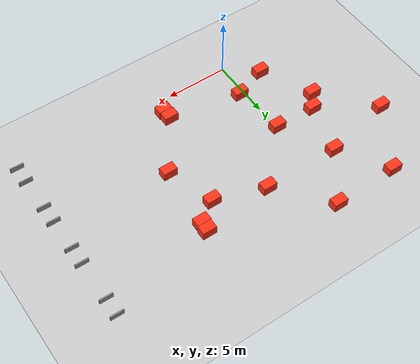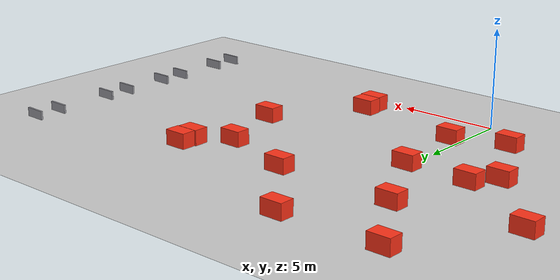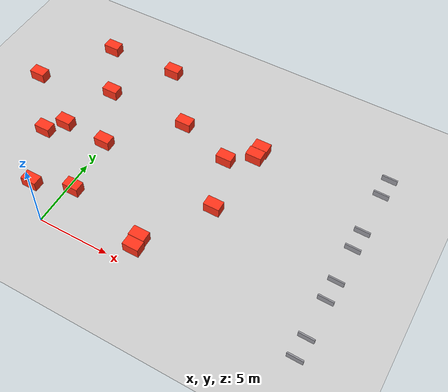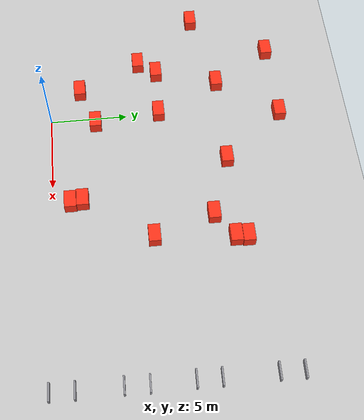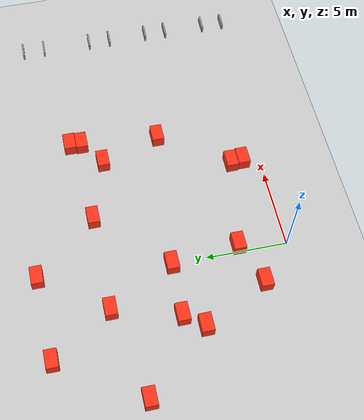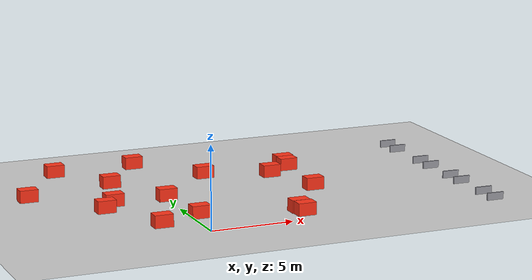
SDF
<sdf version="1.7">
 <world name="default">
  <model name="ground_plane">
   <static>1</static>
   <link name="link">
    <collision name="collision">
     <geometry><plane><normal>0 0 1</normal><size>100 100</size></plane></geometry>
     <surface>
      <contact><collide_bitmask>65535</collide_bitmask></contact>
      <friction>
       <ode><mu>200</mu><mu2>200</mu2><fdir1>0 0 0</fdir1><slip1>0</slip1><slip2>0</slip2></ode>
       <torsional>
        <coefficient>1</coefficient>
        <use_patch_radius>1</use_patch_radius>
        <patch_radius>0.1</patch_radius>
        <ode><slip>0</slip></ode>
       </torsional>
      </friction>
     </surface>
    </collision>
    <visual name="visual">
     <cast_shadows>0</cast_shadows>
     <geometry><plane><normal>0 0 1</normal><size>100 100</size></plane></geometry>
     <material>
      <script><uri>file://media/materials/scripts/gazebo.material</uri><name>Gazebo/Grey</name></script>
     </material>
    </visual>
   </link>
  </model>
  <model name="payload_box_clone_5_clone_10">
   <link name="link">
    <inertial>
     <mass>15</mass>
     <inertia><ixx>2.32332</ixx><ixy>0</ixy><ixz>0</ixz><iyy>1.43272</iyy><iyz>0</iyz><izz>2.2858</izz></inertia>
    </inertial>
    <visual name="visual">
     <geometry><box><size>0.747047 1.12719 0.766877</size></box></geometry>
     <material>
      <script><name>Gazebo/Grey</name><uri>file://media/materials/scripts/gazebo.material</uri></script>
      <shader type="pixel"><normal_map>__default__</normal_map></shader>
      <ambient>1 0.2 0.1 0</ambient>
      <diffuse>0.7 0.7 0.7 1</diffuse>
      <specular>0.01 0.01 0.01 1</specular>
      <emissive>0 0 0 1</emissive>
     </material>
    </visual>
    <collision name="collision">
     <geometry><box><size>0.747047 1.12719 0.766877</size></box></geometry>
     <surface>
      <friction>
       <ode><mu>1</mu><mu2>1</mu2><fdir1>0 0 0</fdir1><slip1>0</slip1><slip2>0</slip2></ode>
       <torsional>
        <coefficient>1</coefficient>
        <patch_radius>0</patch_radius>
        <surface_radius>0</surface_radius>
        <use_patch_radius>1</use_patch_radius>
        <ode><slip>0</slip></ode>
       </torsional>
      </friction>
      <bounce><restitution_coefficient>0</restitution_coefficient><threshold>1e+06</threshold></bounce>
      <contact>
       <collide_without_contact>0</collide_without_contact>
       <collide_without_contact_bitmask>1</collide_without_contact_bitmask>
       <collide_bitmask>1</collide_bitmask>
       <ode>
        <soft_cfm>0</soft_cfm>
        <soft_erp>0.2</soft_erp>
        <kp>1e+13</kp>
        <kd>1</kd>
        <max_vel>0.01</max_vel>
        <min_depth>0</min_depth>
       </ode>
       <bullet>
        <split_impulse>1</split_impulse>
        <split_impulse_penetration_threshold>-0.01</split_impulse_penetration_threshold>
        <soft_cfm>0</soft_cfm>
        <soft_erp>0.2</soft_erp>
        <kp>1e+13</kp>
        <kd>1</kd>
       </bullet>
      </contact>
     </surface>
    </collision>
   </link>
   <static>0</static>
   <pose>6.22353 1.88647 0.383438 0 -0 1.5709</pose>
  </model>
  <model name="payload_box_clone_5_clone_11">
   <link name="link">
    <inertial>
     <mass>15</mass>
     <inertia><ixx>2.32332</ixx><ixy>0</ixy><ixz>0</ixz><iyy>1.43272</iyy><iyz>0</iyz><izz>2.2858</izz></inertia>
    </inertial>
    <visual name="visual">
     <geometry><box><size>0.747047 1.12719 0.766877</size></box></geometry>
     <material>
      <script><name>Gazebo/Grey</name><uri>file://media/materials/scripts/gazebo.material</uri></script>
      <shader type="pixel"><normal_map>__default__</normal_map></shader>
      <ambient>1 0.2 0.1 0</ambient>
      <diffuse>0.7 0.7 0.7 1</diffuse>
      <specular>0.01 0.01 0.01 1</specular>
      <emissive>0 0 0 1</emissive>
     </material>
    </visual>
    <collision name="collision">
     <geometry><box><size>0.747047 1.12719 0.766877</size></box></geometry>
     <surface>
      <friction>
       <ode><mu>1</mu><mu2>1</mu2><fdir1>0 0 0</fdir1><slip1>0</slip1><slip2>0</slip2></ode>
       <torsional>
        <coefficient>1</coefficient>
        <patch_radius>0</patch_radius>
        <surface_radius>0</surface_radius>
        <use_patch_radius>1</use_patch_radius>
        <ode><slip>0</slip></ode>
       </torsional>
      </friction>
      <bounce><restitution_coefficient>0</restitution_coefficient><threshold>1e+06</threshold></bounce>
      <contact>
       <collide_without_contact>0</collide_without_contact>
       <collide_without_contact_bitmask>1</collide_without_contact_bitmask>
       <collide_bitmask>1</collide_bitmask>
       <ode>
        <soft_cfm>0</soft_cfm>
        <soft_erp>0.2</soft_erp>
        <kp>1e+13</kp>
        <kd>1</kd>
        <max_vel>0.01</max_vel>
        <min_depth>0</min_depth>
       </ode>
       <bullet>
        <split_impulse>1</split_impulse>
        <split_impulse_penetration_threshold>-0.01</split_impulse_penetration_threshold>
        <soft_cfm>0</soft_cfm>
        <soft_erp>0.2</soft_erp>
        <kp>1e+13</kp>
        <kd>1</kd>
       </bullet>
      </contact>
     </surface>
    </collision>
   </link>
   <static>0</static>
   <pose>6.28685 1.12341 0.383438 0 -0 1.5709</pose>
  </model>
  <model name="payload_box_clone_5_clone_13">
   <link name="link">
    <inertial>
     <mass>15</mass>
     <inertia><ixx>2.32332</ixx><ixy>0</ixy><ixz>0</ixz><iyy>1.43272</iyy><iyz>0</iyz><izz>2.2858</izz></inertia>
    </inertial>
    <visual name="visual">
     <geometry><box><size>0.747047 1.12719 0.766877</size></box></geometry>
     <material>
      <script><name>Gazebo/Grey</name><uri>file://media/materials/scripts/gazebo.material</uri></script>
      <shader type="pixel"><normal_map>__default__</normal_map></shader>
      <ambient>1 0.2 0.1 0</ambient>
      <diffuse>0.7 0.7 0.7 1</diffuse>
      <specular>0.01 0.01 0.01 1</specular>
      <emissive>0 0 0 1</emissive>
     </material>
    </visual>
    <collision name="collision">
     <geometry><box><size>0.747047 1.12719 0.766877</size></box></geometry>
     <surface>
      <friction>
       <ode><mu>1</mu><mu2>1</mu2><fdir1>0 0 0</fdir1><slip1>0</slip1><slip2>0</slip2></ode>
       <torsional>
        <coefficient>1</coefficient>
        <patch_radius>0</patch_radius>
        <surface_radius>0</surface_radius>
        <use_patch_radius>1</use_patch_radius>
        <ode><slip>0</slip></ode>
       </torsional>
      </friction>
      <bounce><restitution_coefficient>0</restitution_coefficient><threshold>1e+06</threshold></bounce>
      <contact>
       <collide_without_contact>0</collide_without_contact>
       <collide_without_contact_bitmask>1</collide_without_contact_bitmask>
       <collide_bitmask>1</collide_bitmask>
       <ode>
        <soft_cfm>0</soft_cfm>
        <soft_erp>0.2</soft_erp>
        <kp>1e+13</kp>
        <kd>1</kd>
        <max_vel>0.01</max_vel>
        <min_depth>0</min_depth>
       </ode>
       <bullet>
        <split_impulse>1</split_impulse>
        <split_impulse_penetration_threshold>-0.01</split_impulse_penetration_threshold>
        <soft_cfm>0</soft_cfm>
        <soft_erp>0.2</soft_erp>
        <kp>1e+13</kp>
        <kd>1</kd>
       </bullet>
      </contact>
     </surface>
    </collision>
   </link>
   <static>0</static>
   <pose>-2.19685 2.00197 0.383438 0 -0 1.5709</pose>
  </model>
  <model name="payload_box_clone_5_clone_16">
   <link name="link">
    <inertial>
     <mass>15</mass>
     <inertia><ixx>2.32332</ixx><ixy>0</ixy><ixz>0</ixz><iyy>1.43272</iyy><iyz>0</iyz><izz>2.2858</izz></inertia>
    </inertial>
    <visual name="visual">
     <geometry><box><size>0.747047 1.12719 0.766877</size></box></geometry>
     <material>
      <script><name>Gazebo/Grey</name><uri>file://media/materials/scripts/gazebo.material</uri></script>
      <shader type="pixel"><normal_map>__default__</normal_map></shader>
      <ambient>1 0.2 0.1 0</ambient>
      <diffuse>0.7 0.7 0.7 1</diffuse>
      <specular>0.01 0.01 0.01 1</specular>
      <emissive>0 0 0 1</emissive>
     </material>
    </visual>
    <collision name="collision">
     <geometry><box><size>0.747047 1.12719 0.766877</size></box></geometry>
     <surface>
      <friction>
       <ode><mu>1</mu><mu2>1</mu2><fdir1>0 0 0</fdir1><slip1>0</slip1><slip2>0</slip2></ode>
       <torsional>
        <coefficient>1</coefficient>
        <patch_radius>0</patch_radius>
        <surface_radius>0</surface_radius>
        <use_patch_radius>1</use_patch_radius>
        <ode><slip>0</slip></ode>
       </torsional>
      </friction>
      <bounce><restitution_coefficient>0</restitution_coefficient><threshold>1e+06</threshold></bounce>
      <contact>
       <collide_without_contact>0</collide_without_contact>
       <collide_without_contact_bitmask>1</collide_without_contact_bitmask>
       <collide_bitmask>1</collide_bitmask>
       <ode>
        <soft_cfm>0</soft_cfm>
        <soft_erp>0.2</soft_erp>
        <kp>1e+13</kp>
        <kd>1</kd>
        <max_vel>0.01</max_vel>
        <min_depth>0</min_depth>
       </ode>
       <bullet>
        <split_impulse>1</split_impulse>
        <split_impulse_penetration_threshold>-0.01</split_impulse_penetration_threshold>
        <soft_cfm>0</soft_cfm>
        <soft_erp>0.2</soft_erp>
        <kp>1e+13</kp>
        <kd>1</kd>
       </bullet>
      </contact>
     </surface>
    </collision>
   </link>
   <static>0</static>
   <pose>0.442507 2.94292 0.383438 0 -0 1.5709</pose>
  </model>
  <model name="payload_box_clone_5_clone_17">
   <link name="link">
    <inertial>
     <mass>15</mass>
     <inertia><ixx>2.32332</ixx><ixy>0</ixy><ixz>0</ixz><iyy>1.43272</iyy><iyz>0</iyz><izz>2.2858</izz></inertia>
    </inertial>
    <visual name="visual">
     <geometry><box><size>0.747047 1.12719 0.766877</size></box></geometry>
     <material>
      <script><name>Gazebo/Grey</name><uri>file://media/materials/scripts/gazebo.material</uri></script>
      <shader type="pixel"><normal_map>__default__</normal_map></shader>
      <ambient>1 0.2 0.1 0</ambient>
      <diffuse>0.7 0.7 0.7 1</diffuse>
      <specular>0.01 0.01 0.01 1</specular>
      <emissive>0 0 0 1</emissive>
     </material>
    </visual>
    <collision name="collision">
     <geometry><box><size>0.747047 1.12719 0.766877</size></box></geometry>
     <surface>
      <friction>
       <ode><mu>1</mu><mu2>1</mu2><fdir1>0 0 0</fdir1><slip1>0</slip1><slip2>0</slip2></ode>
       <torsional>
        <coefficient>1</coefficient>
        <patch_radius>0</patch_radius>
        <surface_radius>0</surface_radius>
        <use_patch_radius>1</use_patch_radius>
        <ode><slip>0</slip></ode>
       </torsional>
      </friction>
      <bounce><restitution_coefficient>0</restitution_coefficient><threshold>1e+06</threshold></bounce>
      <contact>
       <collide_without_contact>0</collide_without_contact>
       <collide_without_contact_bitmask>1</collide_without_contact_bitmask>
       <collide_bitmask>1</collide_bitmask>
       <ode>
        <soft_cfm>0</soft_cfm>
        <soft_erp>0.2</soft_erp>
        <kp>1e+13</kp>
        <kd>1</kd>
        <max_vel>0.01</max_vel>
        <min_depth>0</min_depth>
       </ode>
       <bullet>
        <split_impulse>1</split_impulse>
        <split_impulse_penetration_threshold>-0.01</split_impulse_penetration_threshold>
        <soft_cfm>0</soft_cfm>
        <soft_erp>0.2</soft_erp>
        <kp>1e+13</kp>
        <kd>1</kd>
       </bullet>
      </contact>
     </surface>
    </collision>
   </link>
   <static>0</static>
   <pose>-4.21639 6.06329 0.383438 0 -0 1.5709</pose>
  </model>
  <model name="payload_box_clone_5_clone_18">
   <link name="link">
    <inertial>
     <mass>15</mass>
     <inertia><ixx>2.32332</ixx><ixy>0</ixy><ixz>0</ixz><iyy>1.43272</iyy><iyz>0</iyz><izz>2.2858</izz></inertia>
    </inertial>
    <visual name="visual">
     <geometry><box><size>0.747047 1.12719 0.766877</size></box></geometry>
     <material>
      <script><name>Gazebo/Grey</name><uri>file://media/materials/scripts/gazebo.material</uri></script>
      <shader type="pixel"><normal_map>__default__</normal_map></shader>
      <ambient>1 0.2 0.1 0</ambient>
      <diffuse>0.7 0.7 0.7 1</diffuse>
      <specular>0.01 0.01 0.01 1</specular>
      <emissive>0 0 0 1</emissive>
     </material>
    </visual>
    <collision name="collision">
     <geometry><box><size>0.747047 1.12719 0.766877</size></box></geometry>
     <surface>
      <friction>
       <ode><mu>1</mu><mu2>1</mu2><fdir1>0 0 0</fdir1><slip1>0</slip1><slip2>0</slip2></ode>
       <torsional>
        <coefficient>1</coefficient>
        <patch_radius>0</patch_radius>
        <surface_radius>0</surface_radius>
        <use_patch_radius>1</use_patch_radius>
        <ode><slip>0</slip></ode>
       </torsional>
      </friction>
      <bounce><restitution_coefficient>0</restitution_coefficient><threshold>1e+06</threshold></bounce>
      <contact>
       <collide_without_contact>0</collide_without_contact>
       <collide_without_contact_bitmask>1</collide_without_contact_bitmask>
       <collide_bitmask>1</collide_bitmask>
       <ode>
        <soft_cfm>0</soft_cfm>
        <soft_erp>0.2</soft_erp>
        <kp>1e+13</kp>
        <kd>1</kd>
        <max_vel>0.01</max_vel>
        <min_depth>0</min_depth>
       </ode>
       <bullet>
        <split_impulse>1</split_impulse>
        <split_impulse_penetration_threshold>-0.01</split_impulse_penetration_threshold>
        <soft_cfm>0</soft_cfm>
        <soft_erp>0.2</soft_erp>
        <kp>1e+13</kp>
        <kd>1</kd>
       </bullet>
      </contact>
     </surface>
    </collision>
   </link>
   <static>0</static>
   <pose>9.0877 6.14162 0.383438 0 -0 1.5709</pose>
  </model>
  <model name="payload_box_clone_5_clone_19">
   <link name="link">
    <inertial>
     <mass>15</mass>
     <inertia><ixx>2.32332</ixx><ixy>0</ixy><ixz>0</ixz><iyy>1.43272</iyy><iyz>0</iyz><izz>2.2858</izz></inertia>
    </inertial>
    <visual name="visual">
     <geometry><box><size>0.747047 1.12719 0.766877</size></box></geometry>
     <material>
      <script><name>Gazebo/Grey</name><uri>file://media/materials/scripts/gazebo.material</uri></script>
      <shader type="pixel"><normal_map>__default__</normal_map></shader>
      <ambient>1 0.2 0.1 0</ambient>
      <diffuse>0.7 0.7 0.7 1</diffuse>
      <specular>0.01 0.01 0.01 1</specular>
      <emissive>0 0 0 1</emissive>
     </material>
    </visual>
    <collision name="collision">
     <geometry><box><size>0.747047 1.12719 0.766877</size></box></geometry>
     <surface>
      <friction>
       <ode><mu>1</mu><mu2>1</mu2><fdir1>0 0 0</fdir1><slip1>0</slip1><slip2>0</slip2></ode>
       <torsional>
        <coefficient>1</coefficient>
        <patch_radius>0</patch_radius>
        <surface_radius>0</surface_radius>
        <use_patch_radius>1</use_patch_radius>
        <ode><slip>0</slip></ode>
       </torsional>
      </friction>
      <bounce><restitution_coefficient>0</restitution_coefficient><threshold>1e+06</threshold></bounce>
      <contact>
       <collide_without_contact>0</collide_without_contact>
       <collide_without_contact_bitmask>1</collide_without_contact_bitmask>
       <collide_bitmask>1</collide_bitmask>
       <ode>
        <soft_cfm>0</soft_cfm>
        <soft_erp>0.2</soft_erp>
        <kp>1e+13</kp>
        <kd>1</kd>
        <max_vel>0.01</max_vel>
        <min_depth>0</min_depth>
       </ode>
       <bullet>
        <split_impulse>1</split_impulse>
        <split_impulse_penetration_threshold>-0.01</split_impulse_penetration_threshold>
        <soft_cfm>0</soft_cfm>
        <soft_erp>0.2</soft_erp>
        <kp>1e+13</kp>
        <kd>1</kd>
       </bullet>
      </contact>
     </surface>
    </collision>
   </link>
   <static>0</static>
   <pose>-0.03112 7.15043 0.383438 0 -0 1.5709</pose>
  </model>
  <model name="payload_box_clone_5_clone_20">
   <link name="link">
    <inertial>
     <mass>15</mass>
     <inertia><ixx>2.32332</ixx><ixy>0</ixy><ixz>0</ixz><iyy>1.43272</iyy><iyz>0</iyz><izz>2.2858</izz></inertia>
    </inertial>
    <visual name="visual">
     <geometry><box><size>0.747047 1.12719 0.766877</size></box></geometry>
     <material>
      <script><name>Gazebo/Grey</name><uri>file://media/materials/scripts/gazebo.material</uri></script>
      <shader type="pixel"><normal_map>__default__</normal_map></shader>
      <ambient>1 0.2 0.1 0</ambient>
      <diffuse>0.7 0.7 0.7 1</diffuse>
      <specular>0.01 0.01 0.01 1</specular>
      <emissive>0 0 0 1</emissive>
     </material>
    </visual>
    <collision name="collision">
     <geometry><box><size>0.747047 1.12719 0.766877</size></box></geometry>
     <surface>
      <friction>
       <ode><mu>1</mu><mu2>1</mu2><fdir1>0 0 0</fdir1><slip1>0</slip1><slip2>0</slip2></ode>
       <torsional>
        <coefficient>1</coefficient>
        <patch_radius>0</patch_radius>
        <surface_radius>0</surface_radius>
        <use_patch_radius>1</use_patch_radius>
        <ode><slip>0</slip></ode>
       </torsional>
      </friction>
      <bounce><restitution_coefficient>0</restitution_coefficient><threshold>1e+06</threshold></bounce>
      <contact>
       <collide_without_contact>0</collide_without_contact>
       <collide_without_contact_bitmask>1</collide_without_contact_bitmask>
       <collide_bitmask>1</collide_bitmask>
       <ode>
        <soft_cfm>0</soft_cfm>
        <soft_erp>0.2</soft_erp>
        <kp>1e+13</kp>
        <kd>1</kd>
        <max_vel>0.01</max_vel>
        <min_depth>0</min_depth>
       </ode>
       <bullet>
        <split_impulse>1</split_impulse>
        <split_impulse_penetration_threshold>-0.01</split_impulse_penetration_threshold>
        <soft_cfm>0</soft_cfm>
        <soft_erp>0.2</soft_erp>
        <kp>1e+13</kp>
        <kd>1</kd>
       </bullet>
      </contact>
     </surface>
    </collision>
   </link>
   <static>0</static>
   <pose>-3.31997 7.24294 0.383438 0 -0 1.5709</pose>
  </model>
  <model name="payload_box_clone_5_clone_21">
   <link name="link">
    <inertial>
     <mass>15</mass>
     <inertia><ixx>2.32332</ixx><ixy>0</ixy><ixz>0</ixz><iyy>1.43272</iyy><iyz>0</iyz><izz>2.2858</izz></inertia>
    </inertial>
    <visual name="visual">
     <geometry><box><size>0.747047 1.12719 0.766877</size></box></geometry>
     <material>
      <script><name>Gazebo/Grey</name><uri>file://media/materials/scripts/gazebo.material</uri></script>
      <shader type="pixel"><normal_map>__default__</normal_map></shader>
      <ambient>1 0.2 0.1 0</ambient>
      <diffuse>0.7 0.7 0.7 1</diffuse>
      <specular>0.01 0.01 0.01 1</specular>
      <emissive>0 0 0 1</emissive>
     </material>
    </visual>
    <collision name="collision">
     <geometry><box><size>0.747047 1.12719 0.766877</size></box></geometry>
     <surface>
      <friction>
       <ode><mu>1</mu><mu2>1</mu2><fdir1>0 0 0</fdir1><slip1>0</slip1><slip2>0</slip2></ode>
       <torsional>
        <coefficient>1</coefficient>
        <patch_radius>0</patch_radius>
        <surface_radius>0</surface_radius>
        <use_patch_radius>1</use_patch_radius>
        <ode><slip>0</slip></ode>
       </torsional>
      </friction>
      <bounce><restitution_coefficient>0</restitution_coefficient><threshold>1e+06</threshold></bounce>
      <contact>
       <collide_without_contact>0</collide_without_contact>
       <collide_without_contact_bitmask>1</collide_without_contact_bitmask>
       <collide_bitmask>1</collide_bitmask>
       <ode>
        <soft_cfm>0</soft_cfm>
        <soft_erp>0.2</soft_erp>
        <kp>1e+13</kp>
        <kd>1</kd>
        <max_vel>0.01</max_vel>
        <min_depth>0</min_depth>
       </ode>
       <bullet>
        <split_impulse>1</split_impulse>
        <split_impulse_penetration_threshold>-0.01</split_impulse_penetration_threshold>
        <soft_cfm>0</soft_cfm>
        <soft_erp>0.2</soft_erp>
        <kp>1e+13</kp>
        <kd>1</kd>
       </bullet>
      </contact>
     </surface>
    </collision>
   </link>
   <static>0</static>
   <pose>-7.72138 10.0718 0.383438 0 -0 1.5709</pose>
  </model>
  <model name="payload_box_clone_5_clone_22">
   <link name="link">
    <inertial>
     <mass>15</mass>
     <inertia><ixx>2.32332</ixx><ixy>0</ixy><ixz>0</ixz><iyy>1.43272</iyy><iyz>0</iyz><izz>2.2858</izz></inertia>
    </inertial>
    <visual name="visual">
     <geometry><box><size>0.747047 1.12719 0.766877</size></box></geometry>
     <material>
      <script><name>Gazebo/Grey</name><uri>file://media/materials/scripts/gazebo.material</uri></script>
      <shader type="pixel"><normal_map>__default__</normal_map></shader>
      <ambient>1 0.2 0.1 0</ambient>
      <diffuse>0.7 0.7 0.7 1</diffuse>
      <specular>0.01 0.01 0.01 1</specular>
      <emissive>0 0 0 1</emissive>
     </material>
    </visual>
    <collision name="collision">
     <geometry><box><size>0.747047 1.12719 0.766877</size></box></geometry>
     <surface>
      <friction>
       <ode><mu>1</mu><mu2>1</mu2><fdir1>0 0 0</fdir1><slip1>0</slip1><slip2>0</slip2></ode>
       <torsional>
        <coefficient>1</coefficient>
        <patch_radius>0</patch_radius>
        <surface_radius>0</surface_radius>
        <use_patch_radius>1</use_patch_radius>
        <ode><slip>0</slip></ode>
       </torsional>
      </friction>
      <bounce><restitution_coefficient>0</restitution_coefficient><threshold>1e+06</threshold></bounce>
      <contact>
       <collide_without_contact>0</collide_without_contact>
       <collide_without_contact_bitmask>1</collide_without_contact_bitmask>
       <collide_bitmask>1</collide_bitmask>
       <ode>
        <soft_cfm>0</soft_cfm>
        <soft_erp>0.2</soft_erp>
        <kp>1e+13</kp>
        <kd>1</kd>
        <max_vel>0.01</max_vel>
        <min_depth>0</min_depth>
       </ode>
       <bullet>
        <split_impulse>1</split_impulse>
        <split_impulse_penetration_threshold>-0.01</split_impulse_penetration_threshold>
        <soft_cfm>0</soft_cfm>
        <soft_erp>0.2</soft_erp>
        <kp>1e+13</kp>
        <kd>1</kd>
       </bullet>
      </contact>
     </surface>
    </collision>
   </link>
   <static>0</static>
   <pose>7.86278 9.9374 0.383438 0 -0 1.5709</pose>
  </model>
  <model name="payload_box_clone_5_clone_23">
   <link name="link">
    <inertial>
     <mass>15</mass>
     <inertia><ixx>2.32332</ixx><ixy>0</ixy><ixz>0</ixz><iyy>1.43272</iyy><iyz>0</iyz><izz>2.2858</izz></inertia>
    </inertial>
    <visual name="visual">
     <geometry><box><size>0.747047 1.12719 0.766877</size></box></geometry>
     <material>
      <script><name>Gazebo/Grey</name><uri>file://media/materials/scripts/gazebo.material</uri></script>
      <shader type="pixel"><normal_map>__default__</normal_map></shader>
      <ambient>1 0.2 0.1 0</ambient>
      <diffuse>0.7 0.7 0.7 1</diffuse>
      <specular>0.01 0.01 0.01 1</specular>
      <emissive>0 0 0 1</emissive>
     </material>
    </visual>
    <collision name="collision">
     <geometry><box><size>0.747047 1.12719 0.766877</size></box></geometry>
     <surface>
      <friction>
       <ode><mu>1</mu><mu2>1</mu2><fdir1>0 0 0</fdir1><slip1>0</slip1><slip2>0</slip2></ode>
       <torsional>
        <coefficient>1</coefficient>
        <patch_radius>0</patch_radius>
        <surface_radius>0</surface_radius>
        <use_patch_radius>1</use_patch_radius>
        <ode><slip>0</slip></ode>
       </torsional>
      </friction>
      <bounce><restitution_coefficient>0</restitution_coefficient><threshold>1e+06</threshold></bounce>
      <contact>
       <collide_without_contact>0</collide_without_contact>
       <collide_without_contact_bitmask>1</collide_without_contact_bitmask>
       <collide_bitmask>1</collide_bitmask>
       <ode>
        <soft_cfm>0</soft_cfm>
        <soft_erp>0.2</soft_erp>
        <kp>1e+13</kp>
        <kd>1</kd>
        <max_vel>0.01</max_vel>
        <min_depth>0</min_depth>
       </ode>
       <bullet>
        <split_impulse>1</split_impulse>
        <split_impulse_penetration_threshold>-0.01</split_impulse_penetration_threshold>
        <soft_cfm>0</soft_cfm>
        <soft_erp>0.2</soft_erp>
        <kp>1e+13</kp>
        <kd>1</kd>
       </bullet>
      </contact>
     </surface>
    </collision>
   </link>
   <static>0</static>
   <pose>9.50171 11.0764 0.383438 0 -0 1.5709</pose>
  </model>
  <model name="payload_box_clone_5_clone_24">
   <link name="link">
    <inertial>
     <mass>15</mass>
     <inertia><ixx>2.32332</ixx><ixy>0</ixy><ixz>0</ixz><iyy>1.43272</iyy><iyz>0</iyz><izz>2.2858</izz></inertia>
    </inertial>
    <visual name="visual">
     <geometry><box><size>0.747047 1.12719 0.766877</size></box></geometry>
     <material>
      <script><name>Gazebo/Grey</name><uri>file://media/materials/scripts/gazebo.material</uri></script>
      <shader type="pixel"><normal_map>__default__</normal_map></shader>
      <ambient>1 0.2 0.1 0</ambient>
      <diffuse>0.7 0.7 0.7 1</diffuse>
      <specular>0.01 0.01 0.01 1</specular>
      <emissive>0 0 0 1</emissive>
     </material>
    </visual>
    <collision name="collision">
     <geometry><box><size>0.747047 1.12719 0.766877</size></box></geometry>
     <surface>
      <friction>
       <ode><mu>1</mu><mu2>1</mu2><fdir1>0 0 0</fdir1><slip1>0</slip1><slip2>0</slip2></ode>
       <torsional>
        <coefficient>1</coefficient>
        <patch_radius>0</patch_radius>
        <surface_radius>0</surface_radius>
        <use_patch_radius>1</use_patch_radius>
        <ode><slip>0</slip></ode>
       </torsional>
      </friction>
      <bounce><restitution_coefficient>0</restitution_coefficient><threshold>1e+06</threshold></bounce>
      <contact>
       <collide_without_contact>0</collide_without_contact>
       <collide_without_contact_bitmask>1</collide_without_contact_bitmask>
       <collide_bitmask>1</collide_bitmask>
       <ode>
        <soft_cfm>0</soft_cfm>
        <soft_erp>0.2</soft_erp>
        <kp>1e+13</kp>
        <kd>1</kd>
        <max_vel>0.01</max_vel>
        <min_depth>0</min_depth>
       </ode>
       <bullet>
        <split_impulse>1</split_impulse>
        <split_impulse_penetration_threshold>-0.01</split_impulse_penetration_threshold>
        <soft_cfm>0</soft_cfm>
        <soft_erp>0.2</soft_erp>
        <kp>1e+13</kp>
        <kd>1</kd>
       </bullet>
      </contact>
     </surface>
    </collision>
   </link>
   <static>0</static>
   <pose>9.56595 11.8328 0.383438 0 -0 1.5709</pose>
  </model>
  <model name="payload_box_clone_5_clone_25">
   <link name="link">
    <inertial>
     <mass>15</mass>
     <inertia><ixx>2.32332</ixx><ixy>0</ixy><ixz>0</ixz><iyy>1.43272</iyy><iyz>0</iyz><izz>2.2858</izz></inertia>
    </inertial>
    <visual name="visual">
     <geometry><box><size>0.747047 1.12719 0.766877</size></box></geometry>
     <material>
      <script><name>Gazebo/Grey</name><uri>file://media/materials/scripts/gazebo.material</uri></script>
      <shader type="pixel"><normal_map>__default__</normal_map></shader>
      <ambient>1 0.2 0.1 0</ambient>
      <diffuse>0.7 0.7 0.7 1</diffuse>
      <specular>0.01 0.01 0.01 1</specular>
      <emissive>0 0 0 1</emissive>
     </material>
    </visual>
    <collision name="collision">
     <geometry><box><size>0.747047 1.12719 0.766877</size></box></geometry>
     <surface>
      <friction>
       <ode><mu>1</mu><mu2>1</mu2><fdir1>0 0 0</fdir1><slip1>0</slip1><slip2>0</slip2></ode>
       <torsional>
        <coefficient>1</coefficient>
        <patch_radius>0</patch_radius>
        <surface_radius>0</surface_radius>
        <use_patch_radius>1</use_patch_radius>
        <ode><slip>0</slip></ode>
       </torsional>
      </friction>
      <bounce><restitution_coefficient>0</restitution_coefficient><threshold>1e+06</threshold></bounce>
      <contact>
       <collide_without_contact>0</collide_without_contact>
       <collide_without_contact_bitmask>1</collide_without_contact_bitmask>
       <collide_bitmask>1</collide_bitmask>
       <ode>
        <soft_cfm>0</soft_cfm>
        <soft_erp>0.2</soft_erp>
        <kp>1e+13</kp>
        <kd>1</kd>
        <max_vel>0.01</max_vel>
        <min_depth>0</min_depth>
       </ode>
       <bullet>
        <split_impulse>1</split_impulse>
        <split_impulse_penetration_threshold>-0.01</split_impulse_penetration_threshold>
        <soft_cfm>0</soft_cfm>
        <soft_erp>0.2</soft_erp>
        <kp>1e+13</kp>
        <kd>1</kd>
       </bullet>
      </contact>
     </surface>
    </collision>
   </link>
   <static>0</static>
   <pose>3.9177 11.243 0.383438 0 -0 1.5709</pose>
  </model>
  <model name="payload_box_clone_5_clone_26">
   <link name="link">
    <inertial>
     <mass>15</mass>
     <inertia><ixx>2.32332</ixx><ixy>0</ixy><ixz>0</ixz><iyy>1.43272</iyy><iyz>0</iyz><izz>2.2858</izz></inertia>
    </inertial>
    <visual name="visual">
     <geometry><box><size>0.747047 1.12719 0.766877</size></box></geometry>
     <material>
      <script><name>Gazebo/Grey</name><uri>file://media/materials/scripts/gazebo.material</uri></script>
      <shader type="pixel"><normal_map>__default__</normal_map></shader>
      <ambient>1 0.2 0.1 0</ambient>
      <diffuse>0.7 0.7 0.7 1</diffuse>
      <specular>0.01 0.01 0.01 1</specular>
      <emissive>0 0 0 1</emissive>
     </material>
    </visual>
    <collision name="collision">
     <geometry><box><size>0.747047 1.12719 0.766877</size></box></geometry>
     <surface>
      <friction>
       <ode><mu>1</mu><mu2>1</mu2><fdir1>0 0 0</fdir1><slip1>0</slip1><slip2>0</slip2></ode>
       <torsional>
        <coefficient>1</coefficient>
        <patch_radius>0</patch_radius>
        <surface_radius>0</surface_radius>
        <use_patch_radius>1</use_patch_radius>
        <ode><slip>0</slip></ode>
       </torsional>
      </friction>
      <bounce><restitution_coefficient>0</restitution_coefficient><threshold>1e+06</threshold></bounce>
      <contact>
       <collide_without_contact>0</collide_without_contact>
       <collide_without_contact_bitmask>1</collide_without_contact_bitmask>
       <collide_bitmask>1</collide_bitmask>
       <ode>
        <soft_cfm>0</soft_cfm>
        <soft_erp>0.2</soft_erp>
        <kp>1e+13</kp>
        <kd>1</kd>
        <max_vel>0.01</max_vel>
        <min_depth>0</min_depth>
       </ode>
       <bullet>
        <split_impulse>1</split_impulse>
        <split_impulse_penetration_threshold>-0.01</split_impulse_penetration_threshold>
        <soft_cfm>0</soft_cfm>
        <soft_erp>0.2</soft_erp>
        <kp>1e+13</kp>
        <kd>1</kd>
       </bullet>
      </contact>
     </surface>
    </collision>
   </link>
   <static>0</static>
   <pose>-2.17649 11.263 0.383438 0 -0 1.5709</pose>
  </model>
  <model name="payload_box_clone_5_clone_27">
   <link name="link">
    <inertial>
     <mass>15</mass>
     <inertia><ixx>2.32332</ixx><ixy>0</ixy><ixz>0</ixz><iyy>1.43272</iyy><iyz>0</iyz><izz>2.2858</izz></inertia>
    </inertial>
    <visual name="visual">
     <geometry><box><size>0.747047 1.12719 0.766877</size></box></geometry>
     <material>
      <script><name>Gazebo/Grey</name><uri>file://media/materials/scripts/gazebo.material</uri></script>
      <shader type="pixel"><normal_map>__default__</normal_map></shader>
      <ambient>1 0.2 0.1 0</ambient>
      <diffuse>0.7 0.7 0.7 1</diffuse>
      <specular>0.01 0.01 0.01 1</specular>
      <emissive>0 0 0 1</emissive>
     </material>
    </visual>
    <collision name="collision">
     <geometry><box><size>0.747047 1.12719 0.766877</size></box></geometry>
     <surface>
      <friction>
       <ode><mu>1</mu><mu2>1</mu2><fdir1>0 0 0</fdir1><slip1>0</slip1><slip2>0</slip2></ode>
       <torsional>
        <coefficient>1</coefficient>
        <patch_radius>0</patch_radius>
        <surface_radius>0</surface_radius>
        <use_patch_radius>1</use_patch_radius>
        <ode><slip>0</slip></ode>
       </torsional>
      </friction>
      <bounce><restitution_coefficient>0</restitution_coefficient><threshold>1e+06</threshold></bounce>
      <contact>
       <collide_without_contact>0</collide_without_contact>
       <collide_without_contact_bitmask>1</collide_without_contact_bitmask>
       <collide_bitmask>1</collide_bitmask>
       <ode>
        <soft_cfm>0</soft_cfm>
        <soft_erp>0.2</soft_erp>
        <kp>1e+13</kp>
        <kd>1</kd>
        <max_vel>0.01</max_vel>
        <min_depth>0</min_depth>
       </ode>
       <bullet>
        <split_impulse>1</split_impulse>
        <split_impulse_penetration_threshold>-0.01</split_impulse_penetration_threshold>
        <soft_cfm>0</soft_cfm>
        <soft_erp>0.2</soft_erp>
        <kp>1e+13</kp>
        <kd>1</kd>
       </bullet>
      </contact>
     </surface>
    </collision>
   </link>
   <static>0</static>
   <pose>0.612798 15.165 0.383438 0 -0 1.57088</pose>
  </model>
  <model name="payload_box_clone_5_clone_29">
   <link name="link">
    <inertial>
     <mass>15</mass>
     <inertia><ixx>2.32332</ixx><ixy>0</ixy><ixz>0</ixz><iyy>1.43272</iyy><iyz>0</iyz><izz>2.2858</izz></inertia>
    </inertial>
    <visual name="visual">
     <geometry><box><size>0.747047 1.12719 0.766877</size></box></geometry>
     <material>
      <script><name>Gazebo/Grey</name><uri>file://media/materials/scripts/gazebo.material</uri></script>
      <shader type="pixel"><normal_map>__default__</normal_map></shader>
      <ambient>1 0.2 0.1 0</ambient>
      <diffuse>0.7 0.7 0.7 1</diffuse>
      <specular>0.01 0.01 0.01 1</specular>
      <emissive>0 0 0 1</emissive>
     </material>
    </visual>
    <collision name="collision">
     <geometry><box><size>0.747047 1.12719 0.766877</size></box></geometry>
     <surface>
      <friction>
       <ode><mu>1</mu><mu2>1</mu2><fdir1>0 0 0</fdir1><slip1>0</slip1><slip2>0</slip2></ode>
       <torsional>
        <coefficient>1</coefficient>
        <patch_radius>0</patch_radius>
        <surface_radius>0</surface_radius>
        <use_patch_radius>1</use_patch_radius>
        <ode><slip>0</slip></ode>
       </torsional>
      </friction>
      <bounce><restitution_coefficient>0</restitution_coefficient><threshold>1e+06</threshold></bounce>
      <contact>
       <collide_without_contact>0</collide_without_contact>
       <collide_without_contact_bitmask>1</collide_without_contact_bitmask>
       <collide_bitmask>1</collide_bitmask>
       <ode>
        <soft_cfm>0</soft_cfm>
        <soft_erp>0.2</soft_erp>
        <kp>1e+13</kp>
        <kd>1</kd>
        <max_vel>0.01</max_vel>
        <min_depth>0</min_depth>
       </ode>
       <bullet>
        <split_impulse>1</split_impulse>
        <split_impulse_penetration_threshold>-0.01</split_impulse_penetration_threshold>
        <soft_cfm>0</soft_cfm>
        <soft_erp>0.2</soft_erp>
        <kp>1e+13</kp>
        <kd>1</kd>
       </bullet>
      </contact>
     </surface>
    </collision>
   </link>
   <static>0</static>
   <pose>-4.57712 15.0248 0.383438 0 -0 1.5709</pose>
  </model>
  <model name="stand_1_clone_1_legs_clone">
   <static>1</static>
   <link name="walls_link">
    <collision name="left_wall_col">
     <pose>0.72 0 0.225 0 -0 0</pose>
     <geometry><box><size>0.1 1.06 0.45</size></box></geometry>
     <surface><friction><ode><mu>10</mu><mu2>10</mu2><slip1>0</slip1><slip2>0</slip2></ode></friction></surface>
    </collision>
    <visual name="left_wall_vis">
     <pose>0.72 0 0.225 0 -0 0</pose>
     <geometry><box><size>0.1 1.06 0.45</size></box></geometry>
     <material>
      <ambient>0.6 0.6 0.63 1</ambient>
      <diffuse>0.6 0.6 0.63 1</diffuse>
      <specular>0.3 0.3 0.3 1</specular>
     </material>
    </visual>
    <collision name="right_wall_col">
     <pose>-0.72 0 0.225 0 -0 0</pose>
     <geometry><box><size>0.1 1.06 0.45</size></box></geometry>
     <surface><friction><ode><mu>10</mu><mu2>10</mu2><slip1>0</slip1><slip2>0</slip2></ode></friction></surface>
    </collision>
    <visual name="right_wall_vis">
     <pose>-0.72 0 0.225 0 -0 0</pose>
     <geometry><box><size>0.1 1.06 0.45</size></box></geometry>
     <material>
      <ambient>0.6 0.6 0.63 1</ambient>
      <diffuse>0.6 0.6 0.63 1</diffuse>
      <specular>0.3 0.3 0.3 1</specular>
     </material>
    </visual>
    <inertial>
     <mass>25</mass>
     <inertia><ixx>1.4</ixx><iyy>2.1</iyy><izz>3.2</izz><ixy>0</ixy><ixz>0</ixz><iyz>0</iyz></inertia>
    </inertial>
   </link>
   <pose>18 0.302234 -2e-06 4e-06 -1e-06 -1.58624</pose>
  </model>
  <model name="stand_1_legs_clone">
   <static>1</static>
   <link name="walls_link">
    <collision name="left_wall_col">
     <pose>0.72 0 0.225 0 -0 0</pose>
     <geometry><box><size>0.1 1.06 0.45</size></box></geometry>
     <surface><friction><ode><mu>10</mu><mu2>10</mu2><slip1>0</slip1><slip2>0</slip2></ode></friction></surface>
    </collision>
    <visual name="left_wall_vis">
     <pose>0.72 0 0.225 0 -0 0</pose>
     <geometry><box><size>0.1 1.06 0.45</size></box></geometry>
     <material>
      <ambient>0.6 0.6 0.63 1</ambient>
      <diffuse>0.6 0.6 0.63 1</diffuse>
      <specular>0.3 0.3 0.3 1</specular>
     </material>
    </visual>
    <collision name="right_wall_col">
     <pose>-0.72 0 0.225 0 -0 0</pose>
     <geometry><box><size>0.1 1.06 0.45</size></box></geometry>
     <surface><friction><ode><mu>10</mu><mu2>10</mu2><slip1>0</slip1><slip2>0</slip2></ode></friction></surface>
    </collision>
    <visual name="right_wall_vis">
     <pose>-0.72 0 0.225 0 -0 0</pose>
     <geometry><box><size>0.1 1.06 0.45</size></box></geometry>
     <material>
      <ambient>0.6 0.6 0.63 1</ambient>
      <diffuse>0.6 0.6 0.63 1</diffuse>
      <specular>0.3 0.3 0.3 1</specular>
     </material>
    </visual>
    <inertial>
     <mass>25</mass>
     <inertia><ixx>1.4</ixx><iyy>2.1</iyy><izz>3.2</izz><ixy>0</ixy><ixz>0</ixz><iyz>0</iyz></inertia>
    </inertial>
   </link>
   <pose>18 4.44507 -3e-06 1.3e-05 2e-06 -1.58718</pose>
  </model>
  <model name="stand_1_clone_legs_clone">
   <static>1</static>
   <link name="walls_link">
    <collision name="left_wall_col">
     <pose>0.72 0 0.225 0 -0 0</pose>
     <geometry><box><size>0.1 1.06 0.45</size></box></geometry>
     <surface><friction><ode><mu>10</mu><mu2>10</mu2><slip1>0</slip1><slip2>0</slip2></ode></friction></surface>
    </collision>
    <visual name="left_wall_vis">
     <pose>0.72 0 0.225 0 -0 0</pose>
     <geometry><box><size>0.1 1.06 0.45</size></box></geometry>
     <material>
      <ambient>0.6 0.6 0.63 1</ambient>
      <diffuse>0.6 0.6 0.63 1</diffuse>
      <specular>0.3 0.3 0.3 1</specular>
     </material>
    </visual>
    <collision name="right_wall_col">
     <pose>-0.72 0 0.225 0 -0 0</pose>
     <geometry><box><size>0.1 1.06 0.45</size></box></geometry>
     <surface><friction><ode><mu>10</mu><mu2>10</mu2><slip1>0</slip1><slip2>0</slip2></ode></friction></surface>
    </collision>
    <visual name="right_wall_vis">
     <pose>-0.72 0 0.225 0 -0 0</pose>
     <geometry><box><size>0.1 1.06 0.45</size></box></geometry>
     <material>
      <ambient>0.6 0.6 0.63 1</ambient>
      <diffuse>0.6 0.6 0.63 1</diffuse>
      <specular>0.3 0.3 0.3 1</specular>
     </material>
    </visual>
    <inertial>
     <mass>25</mass>
     <inertia><ixx>1.4</ixx><iyy>2.1</iyy><izz>3.2</izz><ixy>0</ixy><ixz>0</ixz><iyz>0</iyz></inertia>
    </inertial>
   </link>
   <pose>18 8.45245 -2e-06 6e-06 0 -1.58628</pose>
  </model>
  <model name="stand_1_clone_0_legs_clone">
   <static>1</static>
   <link name="walls_link">
    <collision name="left_wall_col">
     <pose>0.72 0 0.225 0 -0 0</pose>
     <geometry><box><size>0.1 1.06 0.45</size></box></geometry>
     <surface><friction><ode><mu>10</mu><mu2>10</mu2><slip1>0</slip1><slip2>0</slip2></ode></friction></surface>
    </collision>
    <visual name="left_wall_vis">
     <pose>0.72 0 0.225 0 -0 0</pose>
     <geometry><box><size>0.1 1.06 0.45</size></box></geometry>
     <material>
      <ambient>0.6 0.6 0.63 1</ambient>
      <diffuse>0.6 0.6 0.63 1</diffuse>
      <specular>0.3 0.3 0.3 1</specular>
     </material>
    </visual>
    <collision name="right_wall_col">
     <pose>-0.72 0 0.225 0 -0 0</pose>
     <geometry><box><size>0.1 1.06 0.45</size></box></geometry>
     <surface><friction><ode><mu>10</mu><mu2>10</mu2><slip1>0</slip1><slip2>0</slip2></ode></friction></surface>
    </collision>
    <visual name="right_wall_vis">
     <pose>-0.72 0 0.225 0 -0 0</pose>
     <geometry><box><size>0.1 1.06 0.45</size></box></geometry>
     <material>
      <ambient>0.6 0.6 0.63 1</ambient>
      <diffuse>0.6 0.6 0.63 1</diffuse>
      <specular>0.3 0.3 0.3 1</specular>
     </material>
    </visual>
    <inertial>
     <mass>25</mass>
     <inertia><ixx>1.4</ixx><iyy>2.1</iyy><izz>3.2</izz><ixy>0</ixy><ixz>0</ixz><iyz>0</iyz></inertia>
    </inertial>
   </link>
   <pose>18 13.0905 0 0 0 -1.58633</pose>
  </model>
 </world>
</sdf>
